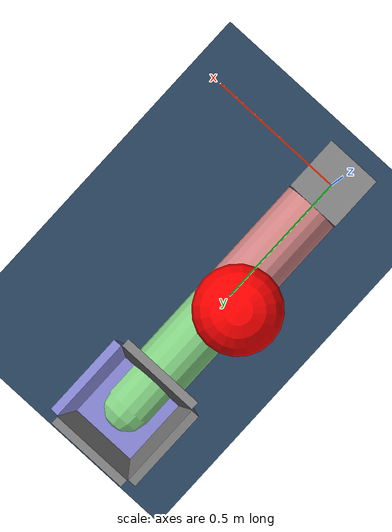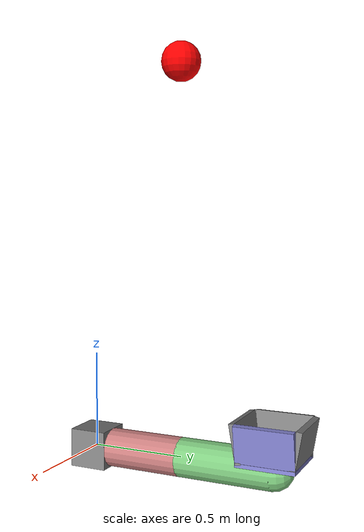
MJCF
<?xml version="1.0" encoding="utf-8"?>
<mujoco>
  <option timestep="0.01" integrator="RK4" gravity="0 0 -9.81"/>
  <compiler convexhull="false" angle="degree"/>
  <default>
    <geom size=".1 .1 .1" type="box"/>
  </default>
  <worldbody>
    <light diffuse=".5 .5 .5" pos="0 0 3" dir="0 0 -1"/>
    <geom name="floor" pos="0 0 -2" size="5 5 1" type="plane" material="matplane"/>
     <camera name="overhead" pos="0 0 4"  target="ball" euler="0 0 0" />

    <body name="base" pos="0 0 0">
      <geom type="box" size="0.1 0.1 0.1"/>
      <body name="upper_arm" pos="0 0 0"  gravcomp="1">
        <inertial pos="0 0 0" mass="1" diaginertia="1.66667e-05 1.66667e-05 1.66667e-05"/>
        <geom type="capsule" fromto="0 0 0 0 0.5 0" size="0.1" material="matshoulder"/>
        <joint name="shoulder_roll" type="hinge" axis="0 1 0" limited="true" range="-45 45"/>
        <joint name="shoulder_joint" type="hinge" axis="-1 0 0" limited="true" range="0 45"/>
        <body name="lower_arm" pos="0 0.5 0"  gravcomp="1">
        <inertial pos="0 0 0" mass="1" diaginertia="1.66667e-05 1.66667e-05 1.66667e-05"/>
          <joint name="elbow_joint" type="hinge" axis="1 0 0"/>
          <geom type="capsule" fromto="0 0 0 0 0.5 0" size="0.1" material="matelbow"/>
          <body name="ee" pos ="0 0.5 0.05" euler="90 0 0" gravcomp="1">
            <inertial pos="0 0 0" mass="1" diaginertia="1.66667e-05 1.66667e-05 1.66667e-05"/>
            <geom type="box" size="0.15 0.01 0.15" material="matee"/>

            <body name="backwall" pos="0 0.1 0.15" euler="100 0 0" gravcomp="1">
              <geom type="box" size="0.15 0.015 0.1" />
            </body>
            <body name="frontwall" pos="0 0.1 -0.15" euler="80 0 0" gravcomp="1">
              <geom type="box" size="0.15 0.015 0.1" />
            </body>
            <body name="leftwall" pos="-0.15 0.1 0" euler="90 10 90" gravcomp="1">
              <geom type="box" size="0.15 0.015 0.1"/>
            </body>
            <body name="rightwall" pos="0.15 0.1 0" euler="90 -10 90" gravcomp="1">
              <geom type="box" size="0.15 0.015 0.1" material="matee"/>
            </body>
          </body>
        </body>
      </body>
    </body>

    <body name="ball" pos ="0 0.5 2">
      <inertial pos="0 0 0" mass="10" diaginertia="1 1 1"/>
      <geom type="sphere" size="0.1" material="matball"/>
      <joint type="free"/>
    </body>

  </worldbody>

  <asset>
    <material name="matplane" texture="texplane"/>
    <material name="matbase" reflectance="0.3" rgba="0.5 0.5 0.5 1"/>
    <material name="matshoulder" reflectance="0.3" rgba="0.8 0.5 0.5 1"/>
    <material name="matelbow" reflectance="0.3" rgba="0.5 0.8 0.5 1"/>
    <material name="matee" reflectance="0.3" rgba="0.5 0.5 0.8 1"/>
    <material name="matball" rgba="1 0 0 1" />
    <texture name="texplane" type="2d" builtin="checker" rgb1="0.2 0.3 0.4" rgb2="0.1 0.2 0.3" width="32" height="32"/>
    <mesh name="cup" scale="0.001 0.001 0.001" refpos="250 -100.0 250" file="Cup.STL"/>
</asset>

  <actuator>
    <motor name="shoulder_actuator" joint="shoulder_joint" ctrlrange="-1 1" gear="20"/>
    <motor name="elbow_actuator" joint="elbow_joint" ctrlrange="-1 1" gear="20"/>
    <motor name="roll_acutator" joint="shoulder_roll" ctrlrange="-1 1" gear="10"/>
  </actuator>
  <sensor>
    <actuatorpos name="shoulder_actuator_pos" actuator="shoulder_actuator"/>
    <actuatorpos name="elbow_actuator_pos" actuator="elbow_actuator"/>
    <actuatorpos name="roll_actuator_pos" actuator="roll_acutator"/>
  </sensor>
</mujoco>
